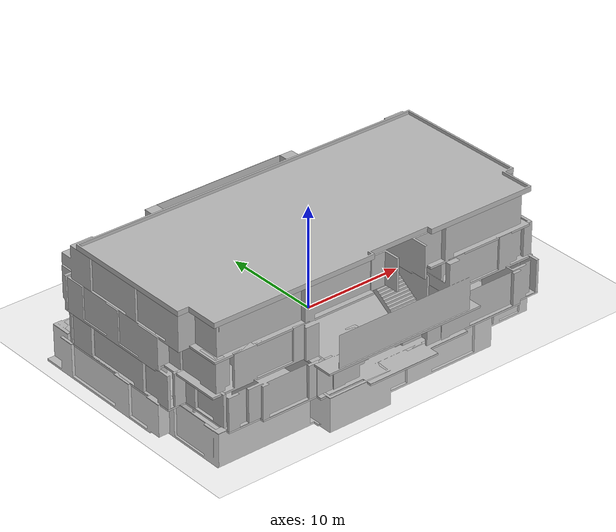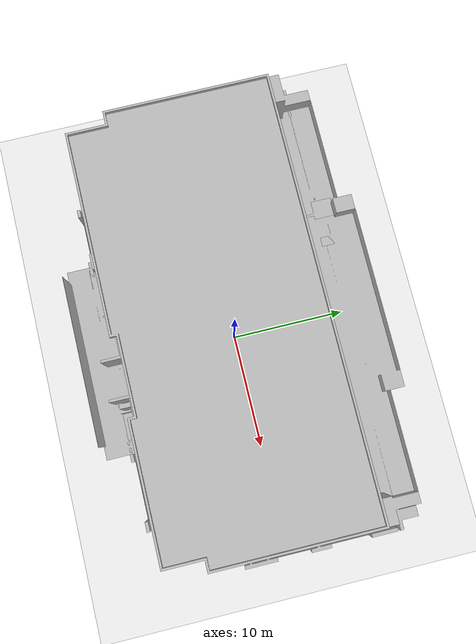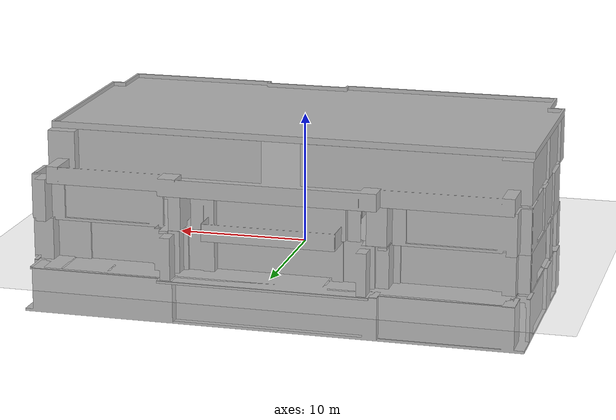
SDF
<?xml version="1.0" ?>
<sdf version="1.10">
  <world name="villa_world">

    <physics name="default_physics" type="gz-physics">
      <max_step_size>0.001</max_step_size>
      <real_time_factor>1.0</real_time_factor>
    </physics>

    <plugin
      filename="gz-sim-physics-system"
      name="gz::sim::systems::Physics"/>

    <plugin
      filename="gz-sim-user-commands-system"
      name="gz::sim::systems::UserCommands"/>

    <plugin
      filename="gz-sim-scene-broadcaster-system"
      name="gz::sim::systems::SceneBroadcaster"/>

    <scene>
      <ambient>0.4 0.4 0.4 1</ambient>
      <background>0.7 0.7 0.7 1</background>
      <shadows>true</shadows>
    </scene>

    <!-- Sun -->
    <light type="directional" name="sun">
      <cast_shadows>true</cast_shadows>
      <pose>0 0 20 0 0 0</pose>
      <diffuse>0.8 0.8 0.8 1</diffuse>
      <specular>0.2 0.2 0.2 1</specular>
      <direction>-0.5 0.1 -0.9</direction>
    </light>

    <!-- Ground -->
    <model name="ground_plane">
      <static>true</static>
      <link name="link">
        <collision name="collision">
          <geometry>
            <plane>
              <normal>0 0 1</normal>
              <size>200 200</size>
            </plane>
          </geometry>
        </collision>

        <visual name="visual">
          <geometry>
            <plane>
              <normal>0 0 1</normal>
              <size>200 200</size>
            </plane>
          </geometry>
        </visual>
      </link>
    </model>

    <include>
      <uri>model://villa_1F</uri>
      <name>villa_1F</name>
      <pose>0 0 0 0 0 0</pose>
    </include>

    <include>
      <uri>model://villa_2F</uri>
      <name>villa_2F</name>
      <pose>0 0 3.2 0 0 0</pose>
    </include>

    <include>
      <uri>model://villa_3F</uri>
      <name>villa_3F</name>
      <pose>0 0 6.4 0 0 0</pose>
    </include>

    <include>
      <uri>model://villa_B1</uri>
      <name>villa_B1</name>
      <pose>0 0 -3.2 0 0 0</pose>
    </include>

    <include>
      <uri>model://villa_Roof</uri>
      <name>villa_Roof</name>
      <pose>0 0 9.6 0 0 0</pose>
    </include>

  </world>
</sdf>

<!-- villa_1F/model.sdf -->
<sdf version="1.9">

  <model name="villa_1F">

    <static>true</static>

    <link name="villa_1F_link">

      <visual name="villa_1F_visual">
        <geometry>
          <mesh>
            <uri>meshes/villa_1F.obj</uri>
          </mesh>
        </geometry>
      </visual>

      <collision name="villa_1F_collision">
        <geometry>
          <mesh>
            <uri>meshes/villa_1F.obj</uri>
          </mesh>
        </geometry>
      </collision>

    </link>

  </model>

</sdf>

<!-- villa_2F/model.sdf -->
<sdf version="1.9">

  <model name="villa_2F">

    <static>true</static>

    <link name="villa_2F_link">

      <visual name="villa_2F_visual">
        <geometry>
          <mesh>
            <uri>meshes/villa_2F.obj</uri>
          </mesh>
        </geometry>
      </visual>

      <collision name="villa_2F_collision">
        <geometry>
          <mesh>
            <uri>meshes/villa_2F.obj</uri>
          </mesh>
        </geometry>
      </collision>

    </link>

  </model>

</sdf>

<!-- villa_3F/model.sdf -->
<sdf version="1.9">

  <model name="villa_3F">

    <static>true</static>

    <link name="villa_3F_link">

      <visual name="villa_3F_visual">
        <geometry>
          <mesh>
            <uri>meshes/villa_3F.obj</uri>
          </mesh>
        </geometry>
      </visual>

      <collision name="villa_3F_collision">
        <geometry>
          <mesh>
            <uri>meshes/villa_3F.obj</uri>
          </mesh>
        </geometry>
      </collision>

    </link>

  </model>

</sdf>

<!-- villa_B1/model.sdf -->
<sdf version="1.9">

  <model name="villa_B1">

    <static>true</static>

    <link name="villa_B1_link">

      <visual name="villa_B1_visual">
        <geometry>
          <mesh>
            <uri>meshes/villa_B1.obj</uri>
          </mesh>
        </geometry>
      </visual>

      <collision name="villa_B1_collision">
        <geometry>
          <mesh>
            <uri>meshes/villa_B1.obj</uri>
          </mesh>
        </geometry>
      </collision>

    </link>

  </model>

</sdf>

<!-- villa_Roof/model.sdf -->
<sdf version="1.9">

  <model name="villa_Roof">

    <static>true</static>

    <link name="villa_Roof_link">

      <visual name="villa_Roof_visual">
        <geometry>
          <mesh>
            <uri>meshes/villa_Roof.obj</uri>
          </mesh>
        </geometry>
      </visual>

      <collision name="villa_Roof_collision">
        <geometry>
          <mesh>
            <uri>meshes/villa_Roof.obj</uri>
          </mesh>
        </geometry>
      </collision>

    </link>

  </model>

</sdf>
